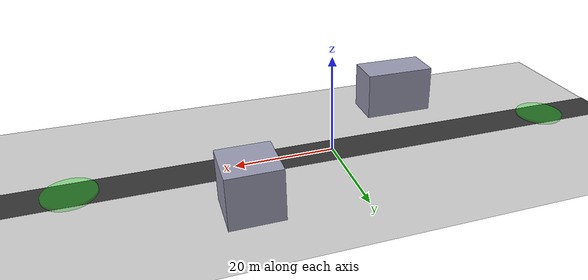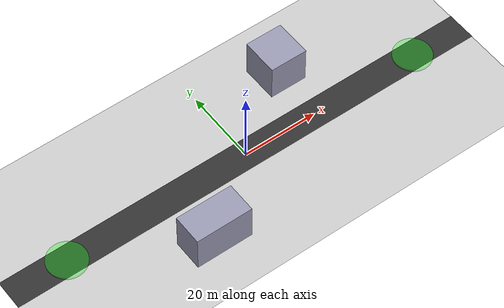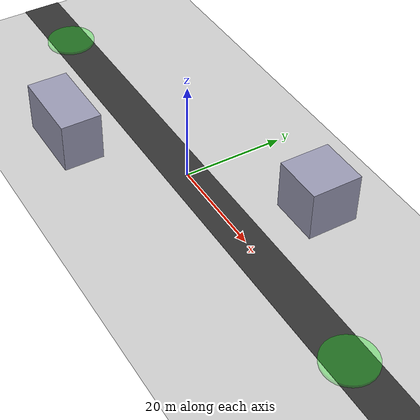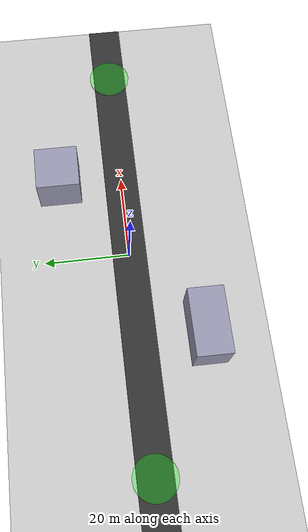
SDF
<?xml version="1.0" encoding="UTF-8"?>
<sdf version="1.9">
  <world name="openclaw">
    <!-- Physics -->
    <physics type="ode">
      <max_step_size>0.001</max_step_size>
      <real_time_factor>1.0</real_time_factor>
      <ode>
        <solver>
          <type>quick</type>
          <iters>50</iters>
          <sor>1.3</sor>
        </solver>
      </ode>
    </physics>

    <!-- Scene -->
    <scene>
      <ambient>0.5 0.5 0.5 1</ambient>
      <background>0.7 0.7 0.7 1</background>
      <shadows>true</shadows>
    </scene>

    <!-- Light: Sun -->
    <light type="directional" name="sun">
      <cast_shadows>true</cast_shadows>
      <pose>0 0 10 0 0 0</pose>
      <diffuse>0.8 0.8 0.8 1</diffuse>
      <specular>0.2 0.2 0.2 1</specular>
      <attenuation>
        <range>1000</range>
        <constant>0.9</constant>
        <linear>0.01</linear>
        <quadratic>0.001</quadratic>
      </attenuation>
    </light>

    <!-- Ground Plane -->
    <model name="ground_plane">
      <static>true</static>
      <link name="link">
        <collision name="collision">
          <geometry>
            <plane>
              <normal>0 0 1</normal>
              <size>1000 1000</size>
            </plane>
          </geometry>
          <surface>
            <friction>
              <ode>
                <mu>1.0</mu>
                <mu2>1.0</mu2>
              </ode>
            </friction>
          </surface>
        </collision>
        <visual name="visual">
          <geometry>
            <plane>
              <normal>0 0 1</normal>
              <size>1000 1000</size>
            </plane>
          </geometry>
          <material>
            <script>
              <uri>file://media/materials/scripts/gazebo.material</uri>
              <name>Gazebo/Grey</name>
            </script>
          </material>
        </visual>
      </link>
    </model>

    <!-- Road Loop -->
    <model name="road_loop">
      <static>true</static>
      <link name="link">
        <pose>0 0 0.01 0 0 0</pose>
        <collision name="collision">
          <geometry>
            <box>
              <size>500 8 0.02</size>
            </box>
          </geometry>
        </collision>
        <visual name="visual">
          <geometry>
            <box>
              <size>500 8 0.02</size>
            </box>
          </geometry>
          <material>
            <ambient>0.2 0.2 0.2 1</ambient>
          </material>
        </visual>
      </link>
    </model>

    <!-- Collection Zone 1 -->
    <model name="collection_zone_1">
      <static>true</static>
      <link name="link">
        <pose>50 0 0.05 0 0 0</pose>
        <visual name="visual">
          <geometry>
            <cylinder>
              <radius>5</radius>
              <height>0.1</height>
            </cylinder>
          </geometry>
          <material>
            <ambient>0 1 0 0.3</ambient>
          </material>
        </visual>
      </link>
    </model>

    <!-- Collection Zone 2 -->
    <model name="collection_zone_2">
      <static>true</static>
      <link name="link">
        <pose>-50 0 0.05 0 0 0</pose>
        <visual name="visual">
          <geometry>
            <cylinder>
              <radius>5</radius>
              <height>0.1</height>
            </cylinder>
          </geometry>
          <material>
            <ambient>0 1 0 0.3</ambient>
          </material>
        </visual>
      </link>
    </model>

    <!-- Building Obstacles -->
    <model name="building_1">
      <static>true</static>
      <link name="link">
        <pose>20 15 5 0 0 0</pose>
        <visual name="visual">
          <geometry>
            <box>
              <size>10 10 10</size>
            </box>
          </geometry>
          <material>
            <ambient>0.6 0.6 0.7 1</ambient>
          </material>
        </visual>
      </link>
    </model>

    <model name="building_2">
      <static>true</static>
      <link name="link">
        <pose>-20 -15 5 0 0 0</pose>
        <visual name="visual">
          <geometry>
            <box>
              <size>15 8 10</size>
            </box>
          </geometry>
          <material>
            <ambient>0.6 0.6 0.7 1</ambient>
          </material>
        </visual>
      </link>
    </model>

    <!-- Include ROS2 Gazebo plugins -->
    <plugin name="gazebo_ros_factory" filename="libgazebo_ros_factory.so"/>
    <plugin name="gazebo_ros_paths" filename="libgazebo_ros_paths.so"/>
  </world>
</sdf>
